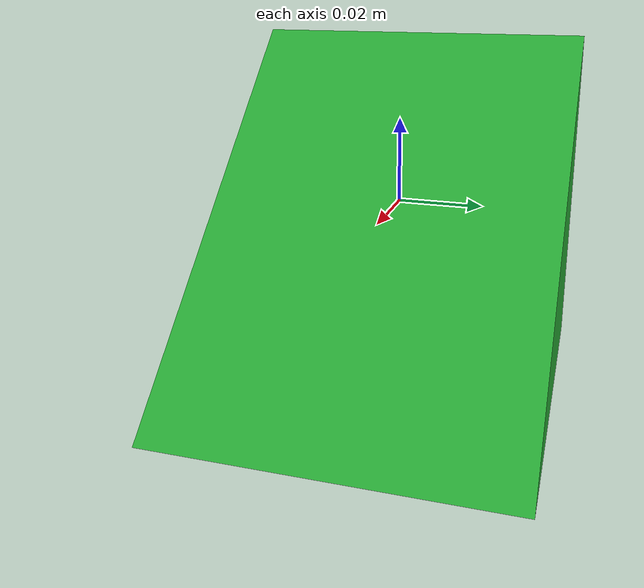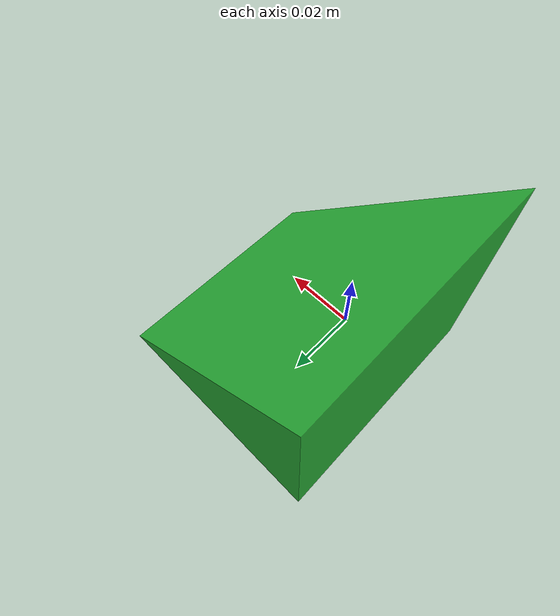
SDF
<?xml version="1.0" ?>
<sdf version="1.5">
  <model name="green_triangle">
    <gravity>1</gravity>
    <link name="link">
      <pose>0 0 0 0 0 0</pose>
      <collision name="collision">
        <geometry>
          <mesh>
						<uri>model://green_triangle/meshes/triangular_prism.dae</uri>
						<scale>0.04 0.04 0.03831</scale>
					</mesh>
        </geometry>
      </collision>
      <visual name="visual">
        <geometry>
          <mesh>
						<uri>model://green_triangle/meshes/triangular_prism.dae</uri>
						<scale>0.04 0.04 0.03831</scale>
					</mesh>
        </geometry>
        <material>
          <script>
            <uri>file://media/materials/scripts/gazebo.material</uri>
	    <name>Gazebo/Green</name>
          </script>
        </material>
      </visual>
    </link>
  </model>
</sdf>
